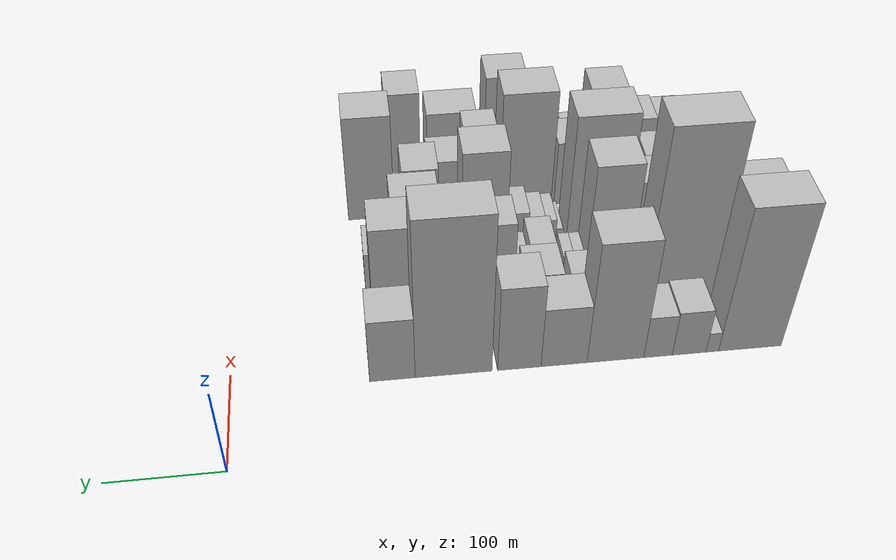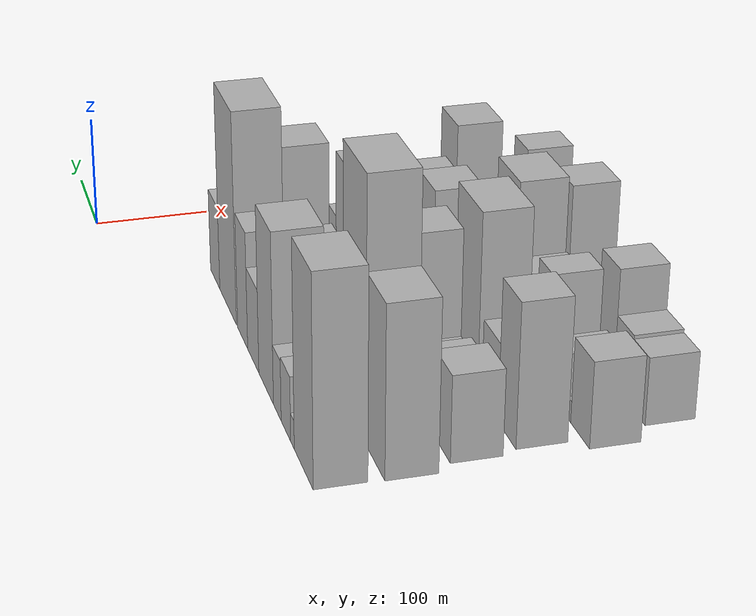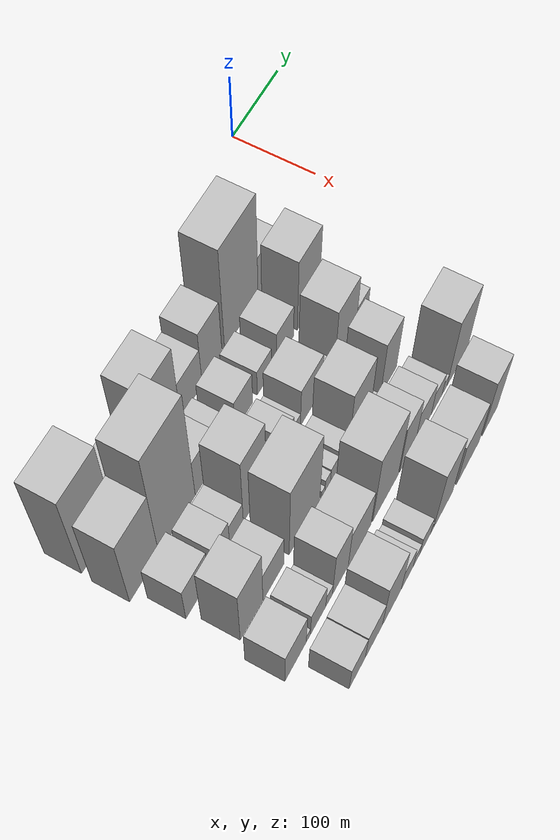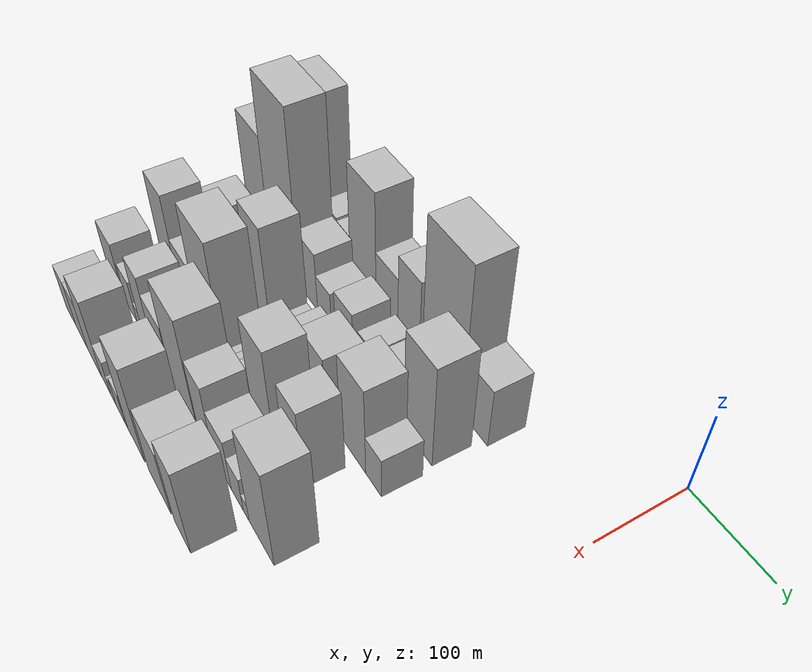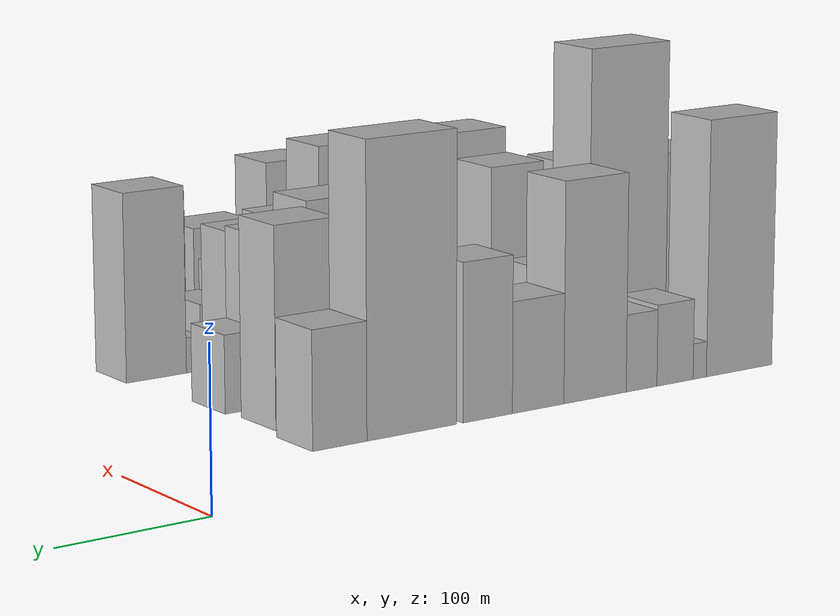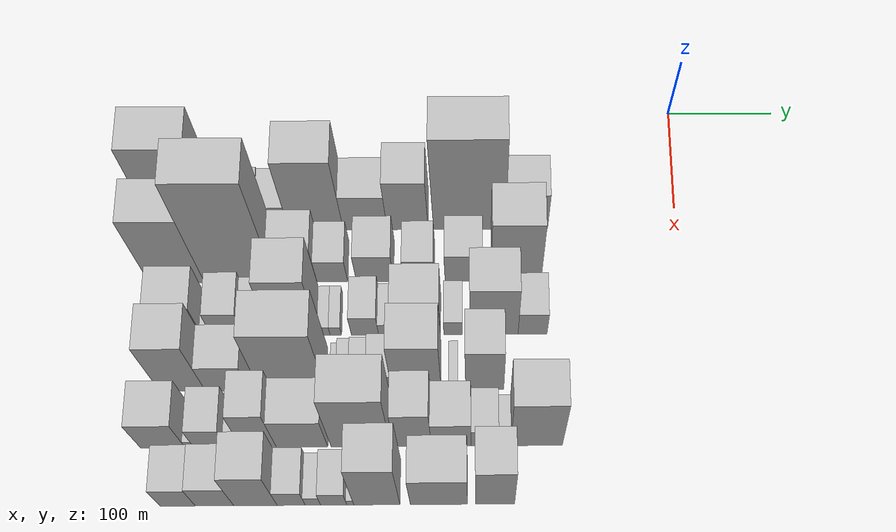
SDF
<sdf version="1.6">
 <world name="default">
  <model name="building_12">
   <static>1</static>
   <pose>100.0000 -458.2166 0 0.000000 0.000000 0.000000</pose>
   <link name="link">
    <pose>0 0 85.50 0 0 0</pose>
    <collision name="collision"><geometry><box><size>40.0000 57.2466 171.0000</size></box></geometry></collision>
    <visual name="visual">
     <cast_shadows>0</cast_shadows>
     <geometry><box><size>40.0000 57.2466 171.0000</size></box></geometry>
     <material>
      <script>
       <uri>model://HANNAS_wall/materials/scripts</uri>
       <uri>model://HANNAS_wall/materials/textures</uri>
       <name>vrc/HANNAS_wall</name>
      </script>
     </material>
    </visual>
   </link>
  </model>
  <model name="building_13">
   <static>1</static>
   <pose>100.0000 -423.8625 0 0.000000 0.000000 0.000000</pose>
   <link name="link">
    <pose>0 0 12.00 0 0 0</pose>
    <collision name="collision"><geometry><box><size>40.0000 11.4616 24.0000</size></box></geometry></collision>
    <visual name="visual">
     <cast_shadows>0</cast_shadows>
     <geometry><box><size>40.0000 11.4616 24.0000</size></box></geometry>
     <material>
      <script>
       <uri>model://HANNAS_wall/materials/scripts</uri>
       <uri>model://HANNAS_wall/materials/textures</uri>
       <name>vrc/HANNAS_wall</name>
      </script>
     </material>
    </visual>
   </link>
  </model>
  <model name="building_14">
   <static>1</static>
   <pose>100.0000 -402.7906 0 0.000000 0.000000 0.000000</pose>
   <link name="link">
    <pose>0 0 27.00 0 0 0</pose>
    <collision name="collision"><geometry><box><size>40.0000 30.6820 54.0000</size></box></geometry></collision>
    <visual name="visual">
     <cast_shadows>0</cast_shadows>
     <geometry><box><size>40.0000 30.6820 54.0000</size></box></geometry>
     <material>
      <script>
       <uri>model://HANNAS_wall/materials/scripts</uri>
       <uri>model://HANNAS_wall/materials/textures</uri>
       <name>vrc/HANNAS_wall</name>
      </script>
     </material>
    </visual>
   </link>
  </model>
  <model name="building_15">
   <static>1</static>
   <pose>100.0000 -374.5829 0 0.000000 0.000000 0.000000</pose>
   <link name="link">
    <pose>0 0 25.50 0 0 0</pose>
    <collision name="collision"><geometry><box><size>40.0000 25.7335 51.0000</size></box></geometry></collision>
    <visual name="visual">
     <cast_shadows>0</cast_shadows>
     <geometry><box><size>40.0000 25.7335 51.0000</size></box></geometry>
     <material>
      <script>
       <uri>model://HANNAS_wall/materials/scripts</uri>
       <uri>model://HANNAS_wall/materials/textures</uri>
       <name>vrc/HANNAS_wall</name>
      </script>
     </material>
    </visual>
   </link>
  </model>
  <model name="building_16">
   <static>1</static>
   <pose>100.0000 -336.2735 0 0.000000 0.000000 0.000000</pose>
   <link name="link">
    <pose>0 0 72.00 0 0 0</pose>
    <collision name="collision"><geometry><box><size>40.0000 50.8852 144.0000</size></box></geometry></collision>
    <visual name="visual">
     <cast_shadows>0</cast_shadows>
     <geometry><box><size>40.0000 50.8852 144.0000</size></box></geometry>
     <material>
      <script>
       <uri>model://HANNAS_wall/materials/scripts</uri>
       <uri>model://HANNAS_wall/materials/textures</uri>
       <name>vrc/HANNAS_wall</name>
      </script>
     </material>
    </visual>
   </link>
  </model>
  <model name="building_17">
   <static>1</static>
   <pose>100.0000 -290.3464 0 0.000000 0.000000 0.000000</pose>
   <link name="link">
    <pose>0 0 36.00 0 0 0</pose>
    <collision name="collision"><geometry><box><size>40.0000 40.9691 72.0000</size></box></geometry></collision>
    <visual name="visual">
     <cast_shadows>0</cast_shadows>
     <geometry><box><size>40.0000 40.9691 72.0000</size></box></geometry>
     <material>
      <script>
       <uri>model://HANNAS_wall/materials/scripts</uri>
       <uri>model://HANNAS_wall/materials/textures</uri>
       <name>vrc/HANNAS_wall</name>
      </script>
     </material>
    </visual>
   </link>
  </model>
  <model name="building_18">
   <static>1</static>
   <pose>100.0000 -250.6649 0 0.000000 0.000000 0.000000</pose>
   <link name="link">
    <pose>0 0 51.00 0 0 0</pose>
    <collision name="collision"><geometry><box><size>40.0000 38.3940 102.0000</size></box></geometry></collision>
    <visual name="visual">
     <cast_shadows>0</cast_shadows>
     <geometry><box><size>40.0000 38.3940 102.0000</size></box></geometry>
     <material>
      <script>
       <uri>model://HANNAS_wall/materials/scripts</uri>
       <uri>model://HANNAS_wall/materials/textures</uri>
       <name>vrc/HANNAS_wall</name>
      </script>
     </material>
    </visual>
   </link>
  </model>
  <model name="building_19">
   <static>1</static>
   <pose>100.0000 -192.8025 0 0.000000 0.000000 0.000000</pose>
   <link name="link">
    <pose>0 0 93.00 0 0 0</pose>
    <collision name="collision"><geometry><box><size>40.0000 67.3308 186.0000</size></box></geometry></collision>
    <visual name="visual">
     <cast_shadows>0</cast_shadows>
     <geometry><box><size>40.0000 67.3308 186.0000</size></box></geometry>
     <material>
      <script>
       <uri>model://HANNAS_wall/materials/scripts</uri>
       <uri>model://HANNAS_wall/materials/textures</uri>
       <name>vrc/HANNAS_wall</name>
      </script>
     </material>
    </visual>
   </link>
  </model>
  <model name="building_20">
   <static>1</static>
   <pose>100.0000 -139.3670 0 0.000000 0.000000 0.000000</pose>
   <link name="link">
    <pose>0 0 37.50 0 0 0</pose>
    <collision name="collision"><geometry><box><size>40.0000 39.5402 75.0000</size></box></geometry></collision>
    <visual name="visual">
     <cast_shadows>0</cast_shadows>
     <geometry><box><size>40.0000 39.5402 75.0000</size></box></geometry>
     <material>
      <script>
       <uri>model://HANNAS_wall/materials/scripts</uri>
       <uri>model://HANNAS_wall/materials/textures</uri>
       <name>vrc/HANNAS_wall</name>
      </script>
     </material>
    </visual>
   </link>
  </model>
  <model name="building_64">
   <static>1</static>
   <pose>152.0000 -463.0371 0 0.000000 0.000000 0.000000</pose>
   <link name="link">
    <pose>0 0 70.50 0 0 0</pose>
    <collision name="collision"><geometry><box><size>40.0000 50.9585 141.0000</size></box></geometry></collision>
    <visual name="visual">
     <cast_shadows>0</cast_shadows>
     <geometry><box><size>40.0000 50.9585 141.0000</size></box></geometry>
     <material>
      <script>
       <uri>model://HANNAS_wall/materials/scripts</uri>
       <uri>model://HANNAS_wall/materials/textures</uri>
       <name>vrc/HANNAS_wall</name>
      </script>
     </material>
    </visual>
   </link>
  </model>
  <model name="building_65">
   <static>1</static>
   <pose>152.0000 -404.8457 0 0.000000 0.000000 0.000000</pose>
   <link name="link">
    <pose>0 0 108.00 0 0 0</pose>
    <collision name="collision"><geometry><box><size>40.0000 65.4243 216.0000</size></box></geometry></collision>
    <visual name="visual">
     <cast_shadows>0</cast_shadows>
     <geometry><box><size>40.0000 65.4243 216.0000</size></box></geometry>
     <material>
      <script>
       <uri>model://HANNAS_wall/materials/scripts</uri>
       <uri>model://HANNAS_wall/materials/textures</uri>
       <name>vrc/HANNAS_wall</name>
      </script>
     </material>
    </visual>
   </link>
  </model>
  <model name="building_66">
   <static>1</static>
   <pose>152.0000 -352.9168 0 0.000000 0.000000 0.000000</pose>
   <link name="link">
    <pose>0 0 37.50 0 0 0</pose>
    <collision name="collision"><geometry><box><size>40.0000 38.4335 75.0000</size></box></geometry></collision>
    <visual name="visual">
     <cast_shadows>0</cast_shadows>
     <geometry><box><size>40.0000 38.4335 75.0000</size></box></geometry>
     <material>
      <script>
       <uri>model://HANNAS_wall/materials/scripts</uri>
       <uri>model://HANNAS_wall/materials/textures</uri>
       <name>vrc/HANNAS_wall</name>
      </script>
     </material>
    </visual>
   </link>
  </model>
  <model name="building_67">
   <static>1</static>
   <pose>152.0000 -319.5123 0 0.000000 0.000000 0.000000</pose>
   <link name="link">
    <pose>0 0 24.00 0 0 0</pose>
    <collision name="collision"><geometry><box><size>40.0000 28.3756 48.0000</size></box></geometry></collision>
    <visual name="visual">
     <cast_shadows>0</cast_shadows>
     <geometry><box><size>40.0000 28.3756 48.0000</size></box></geometry>
     <material>
      <script>
       <uri>model://HANNAS_wall/materials/scripts</uri>
       <uri>model://HANNAS_wall/materials/textures</uri>
       <name>vrc/HANNAS_wall</name>
      </script>
     </material>
    </visual>
   </link>
  </model>
  <model name="building_68">
   <static>1</static>
   <pose>152.0000 -280.1701 0 0.000000 0.000000 0.000000</pose>
   <link name="link">
    <pose>0 0 30.00 0 0 0</pose>
    <collision name="collision"><geometry><box><size>40.0000 34.3088 60.0000</size></box></geometry></collision>
    <visual name="visual">
     <cast_shadows>0</cast_shadows>
     <geometry><box><size>40.0000 34.3088 60.0000</size></box></geometry>
     <material>
      <script>
       <uri>model://HANNAS_wall/materials/scripts</uri>
       <uri>model://HANNAS_wall/materials/textures</uri>
       <name>vrc/HANNAS_wall</name>
      </script>
     </material>
    </visual>
   </link>
  </model>
  <model name="building_69">
   <static>1</static>
   <pose>152.0000 -239.7443 0 0.000000 0.000000 0.000000</pose>
   <link name="link">
    <pose>0 0 24.00 0 0 0</pose>
    <collision name="collision"><geometry><box><size>40.0000 28.5428 48.0000</size></box></geometry></collision>
    <visual name="visual">
     <cast_shadows>0</cast_shadows>
     <geometry><box><size>40.0000 28.5428 48.0000</size></box></geometry>
     <material>
      <script>
       <uri>model://HANNAS_wall/materials/scripts</uri>
       <uri>model://HANNAS_wall/materials/textures</uri>
       <name>vrc/HANNAS_wall</name>
      </script>
     </material>
    </visual>
   </link>
  </model>
  <model name="building_70">
   <static>1</static>
   <pose>152.0000 -198.1770 0 0.000000 0.000000 0.000000</pose>
   <link name="link">
    <pose>0 0 30.00 0 0 0</pose>
    <collision name="collision"><geometry><box><size>40.0000 34.5919 60.0000</size></box></geometry></collision>
    <visual name="visual">
     <cast_shadows>0</cast_shadows>
     <geometry><box><size>40.0000 34.5919 60.0000</size></box></geometry>
     <material>
      <script>
       <uri>model://HANNAS_wall/materials/scripts</uri>
       <uri>model://HANNAS_wall/materials/textures</uri>
       <name>vrc/HANNAS_wall</name>
      </script>
     </material>
    </visual>
   </link>
  </model>
  <model name="building_71">
   <static>1</static>
   <pose>152.0000 -149.8990 0 0.000000 0.000000 0.000000</pose>
   <link name="link">
    <pose>0 0 64.50 0 0 0</pose>
    <collision name="collision"><geometry><box><size>40.0000 45.9640 129.0000</size></box></geometry></collision>
    <visual name="visual">
     <cast_shadows>0</cast_shadows>
     <geometry><box><size>40.0000 45.9640 129.0000</size></box></geometry>
     <material>
      <script>
       <uri>model://HANNAS_wall/materials/scripts</uri>
       <uri>model://HANNAS_wall/materials/textures</uri>
       <name>vrc/HANNAS_wall</name>
      </script>
     </material>
    </visual>
   </link>
  </model>
  <model name="building_112">
   <static>1</static>
   <pose>204.0000 -457.0256 0 0.000000 0.000000 0.000000</pose>
   <link name="link">
    <pose>0 0 36.00 0 0 0</pose>
    <collision name="collision"><geometry><box><size>40.0000 41.0334 72.0000</size></box></geometry></collision>
    <visual name="visual">
     <cast_shadows>0</cast_shadows>
     <geometry><box><size>40.0000 41.0334 72.0000</size></box></geometry>
     <material>
      <script>
       <uri>model://HANNAS_wall/materials/scripts</uri>
       <uri>model://HANNAS_wall/materials/textures</uri>
       <name>vrc/HANNAS_wall</name>
      </script>
     </material>
    </visual>
   </link>
  </model>
  <model name="building_113">
   <static>1</static>
   <pose>204.0000 -432.2854 0 0.000000 0.000000 0.000000</pose>
   <link name="link">
    <pose>0 0 9.00 0 0 0</pose>
    <collision name="collision"><geometry><box><size>40.0000 8.4470 18.0000</size></box></geometry></collision>
    <visual name="visual">
     <cast_shadows>0</cast_shadows>
     <geometry><box><size>40.0000 8.4470 18.0000</size></box></geometry>
     <material>
      <script>
       <uri>model://HANNAS_wall/materials/scripts</uri>
       <uri>model://HANNAS_wall/materials/textures</uri>
       <name>vrc/HANNAS_wall</name>
      </script>
     </material>
    </visual>
   </link>
  </model>
  <model name="building_114">
   <static>1</static>
   <pose>204.0000 -413.3909 0 0.000000 0.000000 0.000000</pose>
   <link name="link">
    <pose>0 0 28.50 0 0 0</pose>
    <collision name="collision"><geometry><box><size>40.0000 29.3420 57.0000</size></box></geometry></collision>
    <visual name="visual">
     <cast_shadows>0</cast_shadows>
     <geometry><box><size>40.0000 29.3420 57.0000</size></box></geometry>
     <material>
      <script>
       <uri>model://HANNAS_wall/materials/scripts</uri>
       <uri>model://HANNAS_wall/materials/textures</uri>
       <name>vrc/HANNAS_wall</name>
      </script>
     </material>
    </visual>
   </link>
  </model>
  <model name="building_115">
   <static>1</static>
   <pose>204.0000 -386.1399 0 0.000000 0.000000 0.000000</pose>
   <link name="link">
    <pose>0 0 22.50 0 0 0</pose>
    <collision name="collision"><geometry><box><size>40.0000 25.1601 45.0000</size></box></geometry></collision>
    <visual name="visual">
     <cast_shadows>0</cast_shadows>
     <geometry><box><size>40.0000 25.1601 45.0000</size></box></geometry>
     <material>
      <script>
       <uri>model://HANNAS_wall/materials/scripts</uri>
       <uri>model://HANNAS_wall/materials/textures</uri>
       <name>vrc/HANNAS_wall</name>
      </script>
     </material>
    </visual>
   </link>
  </model>
  <model name="building_116">
   <static>1</static>
   <pose>204.0000 -351.8930 0 0.000000 0.000000 0.000000</pose>
   <link name="link">
    <pose>0 0 67.50 0 0 0</pose>
    <collision name="collision"><geometry><box><size>40.0000 43.3337 135.0000</size></box></geometry></collision>
    <visual name="visual">
     <cast_shadows>0</cast_shadows>
     <geometry><box><size>40.0000 43.3337 135.0000</size></box></geometry>
     <material>
      <script>
       <uri>model://HANNAS_wall/materials/scripts</uri>
       <uri>model://HANNAS_wall/materials/textures</uri>
       <name>vrc/HANNAS_wall</name>
      </script>
     </material>
    </visual>
   </link>
  </model>
  <model name="building_117">
   <static>1</static>
   <pose>204.0000 -325.1141 0 0.000000 0.000000 0.000000</pose>
   <link name="link">
    <pose>0 0 10.50 0 0 0</pose>
    <collision name="collision"><geometry><box><size>40.0000 10.2241 21.0000</size></box></geometry></collision>
    <visual name="visual">
     <cast_shadows>0</cast_shadows>
     <geometry><box><size>40.0000 10.2241 21.0000</size></box></geometry>
     <material>
      <script>
       <uri>model://HANNAS_wall/materials/scripts</uri>
       <uri>model://HANNAS_wall/materials/textures</uri>
       <name>vrc/HANNAS_wall</name>
      </script>
     </material>
    </visual>
   </link>
  </model>
  <model name="building_118">
   <static>1</static>
   <pose>204.0000 -314.8128 0 0.000000 0.000000 0.000000</pose>
   <link name="link">
    <pose>0 0 10.50 0 0 0</pose>
    <collision name="collision"><geometry><box><size>40.0000 10.3785 21.0000</size></box></geometry></collision>
    <visual name="visual">
     <cast_shadows>0</cast_shadows>
     <geometry><box><size>40.0000 10.3785 21.0000</size></box></geometry>
     <material>
      <script>
       <uri>model://HANNAS_wall/materials/scripts</uri>
       <uri>model://HANNAS_wall/materials/textures</uri>
       <name>vrc/HANNAS_wall</name>
      </script>
     </material>
    </visual>
   </link>
  </model>
  <model name="building_119">
   <static>1</static>
   <pose>204.0000 -288.2839 0 0.000000 0.000000 0.000000</pose>
   <link name="link">
    <pose>0 0 22.50 0 0 0</pose>
    <collision name="collision"><geometry><box><size>40.0000 24.6793 45.0000</size></box></geometry></collision>
    <visual name="visual">
     <cast_shadows>0</cast_shadows>
     <geometry><box><size>40.0000 24.6793 45.0000</size></box></geometry>
     <material>
      <script>
       <uri>model://HANNAS_wall/materials/scripts</uri>
       <uri>model://HANNAS_wall/materials/textures</uri>
       <name>vrc/HANNAS_wall</name>
      </script>
     </material>
    </visual>
   </link>
  </model>
  <model name="building_120">
   <static>1</static>
   <pose>204.0000 -269.4626 0 0.000000 0.000000 0.000000</pose>
   <link name="link">
    <pose>0 0 13.50 0 0 0</pose>
    <collision name="collision"><geometry><box><size>40.0000 12.9634 27.0000</size></box></geometry></collision>
    <visual name="visual">
     <cast_shadows>0</cast_shadows>
     <geometry><box><size>40.0000 12.9634 27.0000</size></box></geometry>
     <material>
      <script>
       <uri>model://HANNAS_wall/materials/scripts</uri>
       <uri>model://HANNAS_wall/materials/textures</uri>
       <name>vrc/HANNAS_wall</name>
      </script>
     </material>
    </visual>
   </link>
  </model>
  <model name="building_121">
   <static>1</static>
   <pose>204.0000 -241.2299 0 0.000000 0.000000 0.000000</pose>
   <link name="link">
    <pose>0 0 37.50 0 0 0</pose>
    <collision name="collision"><geometry><box><size>40.0000 43.5019 75.0000</size></box></geometry></collision>
    <visual name="visual">
     <cast_shadows>0</cast_shadows>
     <geometry><box><size>40.0000 43.5019 75.0000</size></box></geometry>
     <material>
      <script>
       <uri>model://HANNAS_wall/materials/scripts</uri>
       <uri>model://HANNAS_wall/materials/textures</uri>
       <name>vrc/HANNAS_wall</name>
      </script>
     </material>
    </visual>
   </link>
  </model>
  <model name="building_122">
   <static>1</static>
   <pose>204.0000 -208.0186 0 0.000000 0.000000 0.000000</pose>
   <link name="link">
    <pose>0 0 16.50 0 0 0</pose>
    <collision name="collision"><geometry><box><size>40.0000 16.9208 33.0000</size></box></geometry></collision>
    <visual name="visual">
     <cast_shadows>0</cast_shadows>
     <geometry><box><size>40.0000 16.9208 33.0000</size></box></geometry>
     <material>
      <script>
       <uri>model://HANNAS_wall/materials/scripts</uri>
       <uri>model://HANNAS_wall/materials/textures</uri>
       <name>vrc/HANNAS_wall</name>
      </script>
     </material>
    </visual>
   </link>
  </model>
  <model name="building_123">
   <static>1</static>
   <pose>204.0000 -170.7952 0 0.000000 0.000000 0.000000</pose>
   <link name="link">
    <pose>0 0 55.50 0 0 0</pose>
    <collision name="collision"><geometry><box><size>40.0000 43.5260 111.0000</size></box></geometry></collision>
    <visual name="visual">
     <cast_shadows>0</cast_shadows>
     <geometry><box><size>40.0000 43.5260 111.0000</size></box></geometry>
     <material>
      <script>
       <uri>model://HANNAS_wall/materials/scripts</uri>
       <uri>model://HANNAS_wall/materials/textures</uri>
       <name>vrc/HANNAS_wall</name>
      </script>
     </material>
    </visual>
   </link>
  </model>
  <model name="building_124">
   <static>1</static>
   <pose>204.0000 -135.8240 0 0.000000 0.000000 0.000000</pose>
   <link name="link">
    <pose>0 0 25.50 0 0 0</pose>
    <collision name="collision"><geometry><box><size>40.0000 26.4164 51.0000</size></box></geometry></collision>
    <visual name="visual">
     <cast_shadows>0</cast_shadows>
     <geometry><box><size>40.0000 26.4164 51.0000</size></box></geometry>
     <material>
      <script>
       <uri>model://HANNAS_wall/materials/scripts</uri>
       <uri>model://HANNAS_wall/materials/textures</uri>
       <name>vrc/HANNAS_wall</name>
      </script>
     </material>
    </visual>
   </link>
  </model>
  <model name="building_165">
   <static>1</static>
   <pose>256.0000 -450.5949 0 0.000000 0.000000 0.000000</pose>
   <link name="link">
    <pose>0 0 60.00 0 0 0</pose>
    <collision name="collision"><geometry><box><size>40.0000 40.9616 120.0000</size></box></geometry></collision>
    <visual name="visual">
     <cast_shadows>0</cast_shadows>
     <geometry><box><size>40.0000 40.9616 120.0000</size></box></geometry>
     <material>
      <script>
       <uri>model://HANNAS_wall/materials/scripts</uri>
       <uri>model://HANNAS_wall/materials/textures</uri>
       <name>vrc/HANNAS_wall</name>
      </script>
     </material>
    </visual>
   </link>
  </model>
  <model name="building_166">
   <static>1</static>
   <pose>256.0000 -410.5222 0 0.000000 0.000000 0.000000</pose>
   <link name="link">
    <pose>0 0 33.00 0 0 0</pose>
    <collision name="collision"><geometry><box><size>40.0000 39.1838 66.0000</size></box></geometry></collision>
    <visual name="visual">
     <cast_shadows>0</cast_shadows>
     <geometry><box><size>40.0000 39.1838 66.0000</size></box></geometry>
     <material>
      <script>
       <uri>model://HANNAS_wall/materials/scripts</uri>
       <uri>model://HANNAS_wall/materials/textures</uri>
       <name>vrc/HANNAS_wall</name>
      </script>
     </material>
    </visual>
   </link>
  </model>
  <model name="building_167">
   <static>1</static>
   <pose>256.0000 -351.4266 0 0.000000 0.000000 0.000000</pose>
   <link name="link">
    <pose>0 0 75.00 0 0 0</pose>
    <collision name="collision"><geometry><box><size>40.0000 59.0075 150.0000</size></box></geometry></collision>
    <visual name="visual">
     <cast_shadows>0</cast_shadows>
     <geometry><box><size>40.0000 59.0075 150.0000</size></box></geometry>
     <material>
      <script>
       <uri>model://HANNAS_wall/materials/scripts</uri>
       <uri>model://HANNAS_wall/materials/textures</uri>
       <name>vrc/HANNAS_wall</name>
      </script>
     </material>
    </visual>
   </link>
  </model>
  <model name="building_168">
   <static>1</static>
   <pose>256.0000 -314.6262 0 0.000000 0.000000 0.000000</pose>
   <link name="link">
    <pose>0 0 7.50 0 0 0</pose>
    <collision name="collision"><geometry><box><size>40.0000 6.5933 15.0000</size></box></geometry></collision>
    <visual name="visual">
     <cast_shadows>0</cast_shadows>
     <geometry><box><size>40.0000 6.5933 15.0000</size></box></geometry>
     <material>
      <script>
       <uri>model://HANNAS_wall/materials/scripts</uri>
       <uri>model://HANNAS_wall/materials/textures</uri>
       <name>vrc/HANNAS_wall</name>
      </script>
     </material>
    </visual>
   </link>
  </model>
  <model name="building_169">
   <static>1</static>
   <pose>256.0000 -305.7948 0 0.000000 0.000000 0.000000</pose>
   <link name="link">
    <pose>0 0 13.50 0 0 0</pose>
    <collision name="collision"><geometry><box><size>40.0000 11.0695 27.0000</size></box></geometry></collision>
    <visual name="visual">
     <cast_shadows>0</cast_shadows>
     <geometry><box><size>40.0000 11.0695 27.0000</size></box></geometry>
     <material>
      <script>
       <uri>model://HANNAS_wall/materials/scripts</uri>
       <uri>model://HANNAS_wall/materials/textures</uri>
       <name>vrc/HANNAS_wall</name>
      </script>
     </material>
    </visual>
   </link>
  </model>
  <model name="building_170">
   <static>1</static>
   <pose>256.0000 -292.3068 0 0.000000 0.000000 0.000000</pose>
   <link name="link">
    <pose>0 0 15.00 0 0 0</pose>
    <collision name="collision"><geometry><box><size>40.0000 15.9064 30.0000</size></box></geometry></collision>
    <visual name="visual">
     <cast_shadows>0</cast_shadows>
     <geometry><box><size>40.0000 15.9064 30.0000</size></box></geometry>
     <material>
      <script>
       <uri>model://HANNAS_wall/materials/scripts</uri>
       <uri>model://HANNAS_wall/materials/textures</uri>
       <name>vrc/HANNAS_wall</name>
      </script>
     </material>
    </visual>
   </link>
  </model>
  <model name="building_171">
   <static>1</static>
   <pose>256.0000 -273.6923 0 0.000000 0.000000 0.000000</pose>
   <link name="link">
    <pose>0 0 19.50 0 0 0</pose>
    <collision name="collision"><geometry><box><size>40.0000 21.3225 39.0000</size></box></geometry></collision>
    <visual name="visual">
     <cast_shadows>0</cast_shadows>
     <geometry><box><size>40.0000 21.3225 39.0000</size></box></geometry>
     <material>
      <script>
       <uri>model://HANNAS_wall/materials/scripts</uri>
       <uri>model://HANNAS_wall/materials/textures</uri>
       <name>vrc/HANNAS_wall</name>
      </script>
     </material>
    </visual>
   </link>
  </model>
  <model name="building_172">
   <static>1</static>
   <pose>256.0000 -240.9467 0 0.000000 0.000000 0.000000</pose>
   <link name="link">
    <pose>0 0 58.50 0 0 0</pose>
    <collision name="collision"><geometry><box><size>40.0000 44.1688 117.0000</size></box></geometry></collision>
    <visual name="visual">
     <cast_shadows>0</cast_shadows>
     <geometry><box><size>40.0000 44.1688 117.0000</size></box></geometry>
     <material>
      <script>
       <uri>model://HANNAS_wall/materials/scripts</uri>
       <uri>model://HANNAS_wall/materials/textures</uri>
       <name>vrc/HANNAS_wall</name>
      </script>
     </material>
    </visual>
   </link>
  </model>
  <model name="building_173">
   <static>1</static>
   <pose>256.0000 -207.8129 0 0.000000 0.000000 0.000000</pose>
   <link name="link">
    <pose>0 0 9.00 0 0 0</pose>
    <collision name="collision"><geometry><box><size>40.0000 8.0987 18.0000</size></box></geometry></collision>
    <visual name="visual">
     <cast_shadows>0</cast_shadows>
     <geometry><box><size>40.0000 8.0987 18.0000</size></box></geometry>
     <material>
      <script>
       <uri>model://HANNAS_wall/materials/scripts</uri>
       <uri>model://HANNAS_wall/materials/textures</uri>
       <name>vrc/HANNAS_wall</name>
      </script>
     </material>
    </visual>
   </link>
  </model>
  <model name="building_174">
   <static>1</static>
   <pose>256.0000 -179.7424 0 0.000000 0.000000 0.000000</pose>
   <link name="link">
    <pose>0 0 51.00 0 0 0</pose>
    <collision name="collision"><geometry><box><size>40.0000 34.0424 102.0000</size></box></geometry></collision>
    <visual name="visual">
     <cast_shadows>0</cast_shadows>
     <geometry><box><size>40.0000 34.0424 102.0000</size></box></geometry>
     <material>
      <script>
       <uri>model://HANNAS_wall/materials/scripts</uri>
       <uri>model://HANNAS_wall/materials/textures</uri>
       <name>vrc/HANNAS_wall</name>
      </script>
     </material>
    </visual>
   </link>
  </model>
  <model name="building_214">
   <static>1</static>
   <pose>308.0000 -464.5573 0 0.000000 0.000000 0.000000</pose>
   <link name="link">
    <pose>0 0 36.00 0 0 0</pose>
    <collision name="collision"><geometry><box><size>40.0000 39.4164 72.0000</size></box></geometry></collision>
    <visual name="visual">
     <cast_shadows>0</cast_shadows>
     <geometry><box><size>40.0000 39.4164 72.0000</size></box></geometry>
     <material>
      <script>
       <uri>model://HANNAS_wall/materials/scripts</uri>
       <uri>model://HANNAS_wall/materials/textures</uri>
       <name>vrc/HANNAS_wall</name>
      </script>
     </material>
    </visual>
   </link>
  </model>
  <model name="building_215">
   <static>1</static>
   <pose>308.0000 -441.0436 0 0.000000 0.000000 0.000000</pose>
   <link name="link">
    <pose>0 0 9.00 0 0 0</pose>
    <collision name="collision"><geometry><box><size>40.0000 7.6110 18.0000</size></box></geometry></collision>
    <visual name="visual">
     <cast_shadows>0</cast_shadows>
     <geometry><box><size>40.0000 7.6110 18.0000</size></box></geometry>
     <material>
      <script>
       <uri>model://HANNAS_wall/materials/scripts</uri>
       <uri>model://HANNAS_wall/materials/textures</uri>
       <name>vrc/HANNAS_wall</name>
      </script>
     </material>
    </visual>
   </link>
  </model>
  <model name="building_216">
   <static>1</static>
   <pose>308.0000 -422.6847 0 0.000000 0.000000 0.000000</pose>
   <link name="link">
    <pose>0 0 27.00 0 0 0</pose>
    <collision name="collision"><geometry><box><size>40.0000 29.1067 54.0000</size></box></geometry></collision>
    <visual name="visual">
     <cast_shadows>0</cast_shadows>
     <geometry><box><size>40.0000 29.1067 54.0000</size></box></geometry>
     <material>
      <script>
       <uri>model://HANNAS_wall/materials/scripts</uri>
       <uri>model://HANNAS_wall/materials/textures</uri>
       <name>vrc/HANNAS_wall</name>
      </script>
     </material>
    </visual>
   </link>
  </model>
  <model name="building_217">
   <static>1</static>
   <pose>308.0000 -401.6422 0 0.000000 0.000000 0.000000</pose>
   <link name="link">
    <pose>0 0 13.50 0 0 0</pose>
    <collision name="collision"><geometry><box><size>40.0000 12.9783 27.0000</size></box></geometry></collision>
    <visual name="visual">
     <cast_shadows>0</cast_shadows>
     <geometry><box><size>40.0000 12.9783 27.0000</size></box></geometry>
     <material>
      <script>
       <uri>model://HANNAS_wall/materials/scripts</uri>
       <uri>model://HANNAS_wall/materials/textures</uri>
       <name>vrc/HANNAS_wall</name>
      </script>
     </material>
    </visual>
   </link>
  </model>
  <model name="building_218">
   <static>1</static>
   <pose>308.0000 -379.7341 0 0.000000 0.000000 0.000000</pose>
   <link name="link">
    <pose>0 0 49.50 0 0 0</pose>
    <collision name="collision"><geometry><box><size>40.0000 30.8379 99.0000</size></box></geometry></collision>
    <visual name="visual">
     <cast_shadows>0</cast_shadows>
     <geometry><box><size>40.0000 30.8379 99.0000</size></box></geometry>
     <material>
      <script>
       <uri>model://HANNAS_wall/materials/scripts</uri>
       <uri>model://HANNAS_wall/materials/textures</uri>
       <name>vrc/HANNAS_wall</name>
      </script>
     </material>
    </visual>
   </link>
  </model>
  <model name="building_219">
   <static>1</static>
   <pose>308.0000 -341.5793 0 0.000000 0.000000 0.000000</pose>
   <link name="link">
    <pose>0 0 39.00 0 0 0</pose>
    <collision name="collision"><geometry><box><size>40.0000 45.4718 78.0000</size></box></geometry></collision>
    <visual name="visual">
     <cast_shadows>0</cast_shadows>
     <geometry><box><size>40.0000 45.4718 78.0000</size></box></geometry>
     <material>
      <script>
       <uri>model://HANNAS_wall/materials/scripts</uri>
       <uri>model://HANNAS_wall/materials/textures</uri>
       <name>vrc/HANNAS_wall</name>
      </script>
     </material>
    </visual>
   </link>
  </model>
  <model name="building_220">
   <static>1</static>
   <pose>308.0000 -289.4793 0 0.000000 0.000000 0.000000</pose>
   <link name="link">
    <pose>0 0 70.50 0 0 0</pose>
    <collision name="collision"><geometry><box><size>40.0000 52.7281 141.0000</size></box></geometry></collision>
    <visual name="visual">
     <cast_shadows>0</cast_shadows>
     <geometry><box><size>40.0000 52.7281 141.0000</size></box></geometry>
     <material>
      <script>
       <uri>model://HANNAS_wall/materials/scripts</uri>
       <uri>model://HANNAS_wall/materials/textures</uri>
       <name>vrc/HANNAS_wall</name>
      </script>
     </material>
    </visual>
   </link>
  </model>
  <model name="building_221">
   <static>1</static>
   <pose>308.0000 -243.6556 0 0.000000 0.000000 0.000000</pose>
   <link name="link">
    <pose>0 0 48.00 0 0 0</pose>
    <collision name="collision"><geometry><box><size>40.0000 32.9193 96.0000</size></box></geometry></collision>
    <visual name="visual">
     <cast_shadows>0</cast_shadows>
     <geometry><box><size>40.0000 32.9193 96.0000</size></box></geometry>
     <material>
      <script>
       <uri>model://HANNAS_wall/materials/scripts</uri>
       <uri>model://HANNAS_wall/materials/textures</uri>
       <name>vrc/HANNAS_wall</name>
      </script>
     </material>
    </visual>
   </link>
  </model>
  <model name="building_222">
   <static>1</static>
   <pose>308.0000 -209.6905 0 0.000000 0.000000 0.000000</pose>
   <link name="link">
    <pose>0 0 33.00 0 0 0</pose>
    <collision name="collision"><geometry><box><size>40.0000 35.0109 66.0000</size></box></geometry></collision>
    <visual name="visual">
     <cast_shadows>0</cast_shadows>
     <geometry><box><size>40.0000 35.0109 66.0000</size></box></geometry>
     <material>
      <script>
       <uri>model://HANNAS_wall/materials/scripts</uri>
       <uri>model://HANNAS_wall/materials/textures</uri>
       <name>vrc/HANNAS_wall</name>
      </script>
     </material>
    </visual>
   </link>
  </model>
  <model name="building_223">
   <static>1</static>
   <pose>308.0000 -180.1917 0 0.000000 0.000000 0.000000</pose>
   <link name="link">
    <pose>0 0 22.50 0 0 0</pose>
    <collision name="collision"><geometry><box><size>40.0000 23.9869 45.0000</size></box></geometry></collision>
    <visual name="visual">
     <cast_shadows>0</cast_shadows>
     <geometry><box><size>40.0000 23.9869 45.0000</size></box></geometry>
     <material>
      <script>
       <uri>model://HANNAS_wall/materials/scripts</uri>
       <uri>model://HANNAS_wall/materials/textures</uri>
       <name>vrc/HANNAS_wall</name>
      </script>
     </material>
    </visual>
   </link>
  </model>
  <model name="building_224">
   <static>1</static>
   <pose>308.0000 -162.6883 0 0.000000 0.000000 0.000000</pose>
   <link name="link">
    <pose>0 0 12.00 0 0 0</pose>
    <collision name="collision"><geometry><box><size>40.0000 11.0198 24.0000</size></box></geometry></collision>
    <visual name="visual">
     <cast_shadows>0</cast_shadows>
     <geometry><box><size>40.0000 11.0198 24.0000</size></box></geometry>
     <material>
      <script>
       <uri>model://HANNAS_wall/materials/scripts</uri>
       <uri>model://HANNAS_wall/materials/textures</uri>
       <name>vrc/HANNAS_wall</name>
      </script>
     </material>
    </visual>
   </link>
  </model>
  <model name="building_225">
   <static>1</static>
   <pose>308.0000 -134.3724 0 0.000000 0.000000 0.000000</pose>
   <link name="link">
    <pose>0 0 63.00 0 0 0</pose>
    <collision name="collision"><geometry><box><size>40.0000 45.6121 126.0000</size></box></geometry></collision>
    <visual name="visual">
     <cast_shadows>0</cast_shadows>
     <geometry><box><size>40.0000 45.6121 126.0000</size></box></geometry>
     <material>
      <script>
       <uri>model://HANNAS_wall/materials/scripts</uri>
       <uri>model://HANNAS_wall/materials/textures</uri>
       <name>vrc/HANNAS_wall</name>
      </script>
     </material>
    </visual>
   </link>
  </model>
  <model name="building_265">
   <static>1</static>
   <pose>360.0000 -447.6937 0 0.000000 0.000000 0.000000</pose>
   <link name="link">
    <pose>0 0 28.50 0 0 0</pose>
    <collision name="collision"><geometry><box><size>40.0000 30.6837 57.0000</size></box></geometry></collision>
    <visual name="visual">
     <cast_shadows>0</cast_shadows>
     <geometry><box><size>40.0000 30.6837 57.0000</size></box></geometry>
     <material>
      <script>
       <uri>model://HANNAS_wall/materials/scripts</uri>
       <uri>model://HANNAS_wall/materials/textures</uri>
       <name>vrc/HANNAS_wall</name>
      </script>
     </material>
    </visual>
   </link>
  </model>
  <model name="building_266">
   <static>1</static>
   <pose>360.0000 -415.6683 0 0.000000 0.000000 0.000000</pose>
   <link name="link">
    <pose>0 0 30.00 0 0 0</pose>
    <collision name="collision"><geometry><box><size>40.0000 33.3670 60.0000</size></box></geometry></collision>
    <visual name="visual">
     <cast_shadows>0</cast_shadows>
     <geometry><box><size>40.0000 33.3670 60.0000</size></box></geometry>
     <material>
      <script>
       <uri>model://HANNAS_wall/materials/scripts</uri>
       <uri>model://HANNAS_wall/materials/textures</uri>
       <name>vrc/HANNAS_wall</name>
      </script>
     </material>
    </visual>
   </link>
  </model>
  <model name="building_267">
   <static>1</static>
   <pose>360.0000 -380.1220 0 0.000000 0.000000 0.000000</pose>
   <link name="link">
    <pose>0 0 49.50 0 0 0</pose>
    <collision name="collision"><geometry><box><size>40.0000 37.7255 99.0000</size></box></geometry></collision>
    <visual name="visual">
     <cast_shadows>0</cast_shadows>
     <geometry><box><size>40.0000 37.7255 99.0000</size></box></geometry>
     <material>
      <script>
       <uri>model://HANNAS_wall/materials/scripts</uri>
       <uri>model://HANNAS_wall/materials/textures</uri>
       <name>vrc/HANNAS_wall</name>
      </script>
     </material>
    </visual>
   </link>
  </model>
  <model name="building_268">
   <static>1</static>
   <pose>360.0000 -348.9944 0 0.000000 0.000000 0.000000</pose>
   <link name="link">
    <pose>0 0 22.50 0 0 0</pose>
    <collision name="collision"><geometry><box><size>40.0000 24.5298 45.0000</size></box></geometry></collision>
    <visual name="visual">
     <cast_shadows>0</cast_shadows>
     <geometry><box><size>40.0000 24.5298 45.0000</size></box></geometry>
     <material>
      <script>
       <uri>model://HANNAS_wall/materials/scripts</uri>
       <uri>model://HANNAS_wall/materials/textures</uri>
       <name>vrc/HANNAS_wall</name>
      </script>
     </material>
    </visual>
   </link>
  </model>
  <model name="building_269">
   <static>1</static>
   <pose>360.0000 -330.0386 0 0.000000 0.000000 0.000000</pose>
   <link name="link">
    <pose>0 0 13.50 0 0 0</pose>
    <collision name="collision"><geometry><box><size>40.0000 13.3818 27.0000</size></box></geometry></collision>
    <visual name="visual">
     <cast_shadows>0</cast_shadows>
     <geometry><box><size>40.0000 13.3818 27.0000</size></box></geometry>
     <material>
      <script>
       <uri>model://HANNAS_wall/materials/scripts</uri>
       <uri>model://HANNAS_wall/materials/textures</uri>
       <name>vrc/HANNAS_wall</name>
      </script>
     </material>
    </visual>
   </link>
  </model>
  <model name="building_270">
   <static>1</static>
   <pose>360.0000 -311.9792 0 0.000000 0.000000 0.000000</pose>
   <link name="link">
    <pose>0 0 19.50 0 0 0</pose>
    <collision name="collision"><geometry><box><size>40.0000 22.7369 39.0000</size></box></geometry></collision>
    <visual name="visual">
     <cast_shadows>0</cast_shadows>
     <geometry><box><size>40.0000 22.7369 39.0000</size></box></geometry>
     <material>
      <script>
       <uri>model://HANNAS_wall/materials/scripts</uri>
       <uri>model://HANNAS_wall/materials/textures</uri>
       <name>vrc/HANNAS_wall</name>
      </script>
     </material>
    </visual>
   </link>
  </model>
  <model name="building_271">
   <static>1</static>
   <pose>360.0000 -297.5783 0 0.000000 0.000000 0.000000</pose>
   <link name="link">
    <pose>0 0 7.50 0 0 0</pose>
    <collision name="collision"><geometry><box><size>40.0000 6.0649 15.0000</size></box></geometry></collision>
    <visual name="visual">
     <cast_shadows>0</cast_shadows>
     <geometry><box><size>40.0000 6.0649 15.0000</size></box></geometry>
     <material>
      <script>
       <uri>model://HANNAS_wall/materials/scripts</uri>
       <uri>model://HANNAS_wall/materials/textures</uri>
       <name>vrc/HANNAS_wall</name>
      </script>
     </material>
    </visual>
   </link>
  </model>
  <model name="building_272">
   <static>1</static>
   <pose>360.0000 -274.4457 0 0.000000 0.000000 0.000000</pose>
   <link name="link">
    <pose>0 0 61.50 0 0 0</pose>
    <collision name="collision"><geometry><box><size>40.0000 40.2004 123.0000</size></box></geometry></collision>
    <visual name="visual">
     <cast_shadows>0</cast_shadows>
     <geometry><box><size>40.0000 40.2004 123.0000</size></box></geometry>
     <material>
      <script>
       <uri>model://HANNAS_wall/materials/scripts</uri>
       <uri>model://HANNAS_wall/materials/textures</uri>
       <name>vrc/HANNAS_wall</name>
      </script>
     </material>
    </visual>
   </link>
  </model>
  <model name="building_273">
   <static>1</static>
   <pose>360.0000 -220.4862 0 0.000000 0.000000 0.000000</pose>
   <link name="link">
    <pose>0 0 42.00 0 0 0</pose>
    <collision name="collision"><geometry><box><size>40.0000 49.7186 84.0000</size></box></geometry></collision>
    <visual name="visual">
     <cast_shadows>0</cast_shadows>
     <geometry><box><size>40.0000 49.7186 84.0000</size></box></geometry>
     <material>
      <script>
       <uri>model://HANNAS_wall/materials/scripts</uri>
       <uri>model://HANNAS_wall/materials/textures</uri>
       <name>vrc/HANNAS_wall</name>
      </script>
     </material>
    </visual>
   </link>
  </model>
  <model name="building_274">
   <static>1</static>
   <pose>360.0000 -171.6316 0 0.000000 0.000000 0.000000</pose>
   <link name="link">
    <pose>0 0 55.50 0 0 0</pose>
    <collision name="collision"><geometry><box><size>40.0000 33.9906 111.0000</size></box></geometry></collision>
    <visual name="visual">
     <cast_shadows>0</cast_shadows>
     <geometry><box><size>40.0000 33.9906 111.0000</size></box></geometry>
     <material>
      <script>
       <uri>model://HANNAS_wall/materials/scripts</uri>
       <uri>model://HANNAS_wall/materials/textures</uri>
       <name>vrc/HANNAS_wall</name>
      </script>
     </material>
    </visual>
   </link>
  </model>
 </world>
</sdf>
